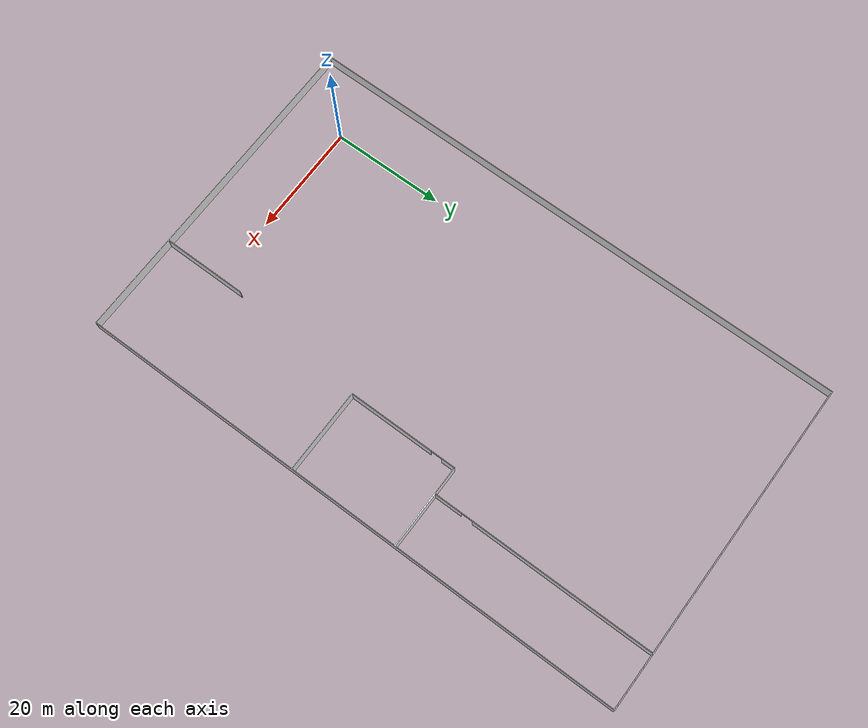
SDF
<?xml version='1.0'?>
<sdf version='1.6'>
    <model name='InfiPlant'>
        <pose frame=''>-10 -10 0 0 0 0</pose>

    <link name="link">
      <pose>0 0 0 0 0 0</pose>
      <inertial>
        <mass>1000</mass>
        <inertia>
          <ixx>10</ixx>
          <ixy>0</ixy>
          <ixz>0</ixz>
          <iyy>10</iyy>
          <iyz>0</iyz>
          <izz>10</izz>
        </inertia>
      </inertial>

      <collision name="collision">
        <geometry>
          <mesh>
            <uri>model://InfiPlant/warehouse_2.dae</uri>
          </mesh>

        </geometry>
      </collision>

      <visual name="visual">
        <geometry>
          <mesh>
            <uri>model://InfiPlant/warehouse_2.dae</uri>
          </mesh>
        </geometry>
      </visual>
    </link>

    <static>1</static>
    </model>
</sdf>
